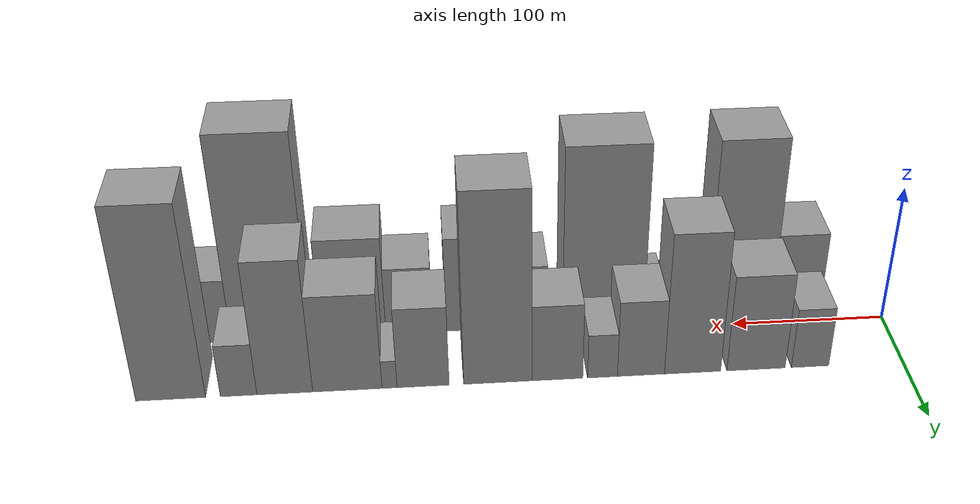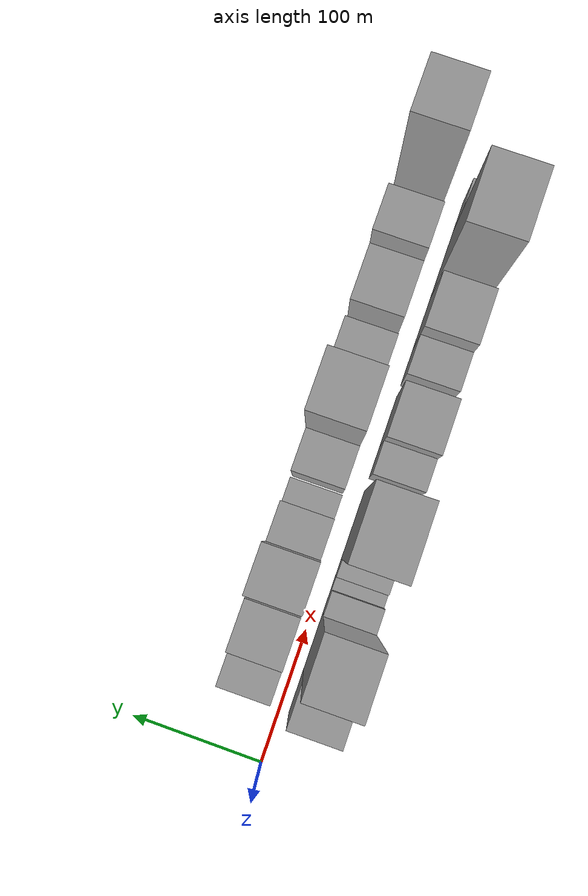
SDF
<sdf version="1.6">
 <world name="default">
  <scene>
   <sky><clouds><speed>12</speed></clouds></sky>
   <ambient>0.4 0.4 0.4 1</ambient>
   <background>0.7 0.7 0.7 1</background>
   <shadows>1</shadows>
  </scene>
  <gravity>0 0 -9.8066</gravity>
  <magnetic_field>6e-06 2.3e-05 -4.2e-05</magnetic_field>
  <physics default="0" name="default_physics" type="ode">
   <ode>
    <solver>
     <type>quick</type>
     <iters>10</iters>
     <sor>1.0</sor>
     <use_dynamic_moi_rescaling>0</use_dynamic_moi_rescaling>
    </solver>
    <constraints>
     <cfm>0</cfm>
     <erp>0.2</erp>
     <contact_max_correcting_vel>100</contact_max_correcting_vel>
     <contact_surface_layer>0.001</contact_surface_layer>
    </constraints>
   </ode>
   <max_step_size>0.004</max_step_size>
   <real_time_factor>1</real_time_factor>
   <real_time_update_rate>250</real_time_update_rate>
  </physics>
  <light name="sun" type="directional">
   <pose>0 0 10 0 0 0</pose>
   <diffuse>0.8 0.8 0.8 1</diffuse>
   <specular>0.2 0.2 0.2 1</specular>
   <attenuation>
    <range>1000</range>
    <constant>0.9</constant>
    <linear>0.01</linear>
    <quadratic>0.001</quadratic>
   </attenuation>
   <direction>-0.5 0.1 -0.9</direction>
  </light>
  <model name="building_1">
   <static>1</static>
   <pose>60.0009 27.5000 0 0.000000 0.000000 1.570796</pose>
   <link name="link">
    <pose>0 0 22.50 0 0 0</pose>
    <collision name="collision"><geometry><box><size>40.0000 24.0019 45.0000</size></box></geometry></collision>
    <visual name="visual">
     <cast_shadows>0</cast_shadows>
     <geometry><box><size>40.0000 24.0019 45.0000</size></box></geometry>
     <material>
      <script>
       <uri>model://grey_wall/materials/scripts</uri>
       <uri>model://grey_wall/materials/textures</uri>
       <name>vrc/grey_wall</name>
      </script>
     </material>
    </visual>
   </link>
  </model>
  <model name="building_2">
   <static>1</static>
   <pose>94.6511 27.5000 0 0.000000 0.000000 1.570796</pose>
   <link name="link">
    <pose>0 0 36.00 0 0 0</pose>
    <collision name="collision"><geometry><box><size>40.0000 37.2985 72.0000</size></box></geometry></collision>
    <visual name="visual">
     <cast_shadows>0</cast_shadows>
     <geometry><box><size>40.0000 37.2985 72.0000</size></box></geometry>
     <material>
      <script>
       <uri>model://grey_wall/materials/scripts</uri>
       <uri>model://grey_wall/materials/textures</uri>
       <name>vrc/grey_wall</name>
      </script>
     </material>
    </visual>
   </link>
  </model>
  <model name="building_3">
   <static>1</static>
   <pose>135.1758 27.5000 0 0.000000 0.000000 1.570796</pose>
   <link name="link">
    <pose>0 0 52.50 0 0 0</pose>
    <collision name="collision"><geometry><box><size>40.0000 35.7508 105.0000</size></box></geometry></collision>
    <visual name="visual">
     <cast_shadows>0</cast_shadows>
     <geometry><box><size>40.0000 35.7508 105.0000</size></box></geometry>
     <material>
      <script>
       <uri>model://grey_wall/materials/scripts</uri>
       <uri>model://grey_wall/materials/textures</uri>
       <name>vrc/grey_wall</name>
      </script>
     </material>
    </visual>
   </link>
  </model>
  <model name="building_4">
   <static>1</static>
   <pose>167.9409 27.5000 0 0.000000 0.000000 1.570796</pose>
   <link name="link">
    <pose>0 0 28.50 0 0 0</pose>
    <collision name="collision"><geometry><box><size>40.0000 29.7795 57.0000</size></box></geometry></collision>
    <visual name="visual">
     <cast_shadows>0</cast_shadows>
     <geometry><box><size>40.0000 29.7795 57.0000</size></box></geometry>
     <material>
      <script>
       <uri>model://grey_wall/materials/scripts</uri>
       <uri>model://grey_wall/materials/textures</uri>
       <name>vrc/grey_wall</name>
      </script>
     </material>
    </visual>
   </link>
  </model>
  <model name="building_5">
   <static>1</static>
   <pose>192.2380 27.5000 0 0.000000 0.000000 1.570796</pose>
   <link name="link">
    <pose>0 0 16.50 0 0 0</pose>
    <collision name="collision"><geometry><box><size>40.0000 18.8147 33.0000</size></box></geometry></collision>
    <visual name="visual">
     <cast_shadows>0</cast_shadows>
     <geometry><box><size>40.0000 18.8147 33.0000</size></box></geometry>
     <material>
      <script>
       <uri>model://grey_wall/materials/scripts</uri>
       <uri>model://grey_wall/materials/textures</uri>
       <name>vrc/grey_wall</name>
      </script>
     </material>
    </visual>
   </link>
  </model>
  <model name="building_6">
   <static>1</static>
   <pose>220.6349 27.5000 0 0.000000 0.000000 1.570796</pose>
   <link name="link">
    <pose>0 0 28.50 0 0 0</pose>
    <collision name="collision"><geometry><box><size>40.0000 31.9791 57.0000</size></box></geometry></collision>
    <visual name="visual">
     <cast_shadows>0</cast_shadows>
     <geometry><box><size>40.0000 31.9791 57.0000</size></box></geometry>
     <material>
      <script>
       <uri>model://grey_wall/materials/scripts</uri>
       <uri>model://grey_wall/materials/textures</uri>
       <name>vrc/grey_wall</name>
      </script>
     </material>
    </visual>
   </link>
  </model>
  <model name="building_7">
   <static>1</static>
   <pose>257.9094 27.5000 0 0.000000 0.000000 1.570796</pose>
   <link name="link">
    <pose>0 0 70.50 0 0 0</pose>
    <collision name="collision"><geometry><box><size>40.0000 42.5698 141.0000</size></box></geometry></collision>
    <visual name="visual">
     <cast_shadows>0</cast_shadows>
     <geometry><box><size>40.0000 42.5698 141.0000</size></box></geometry>
     <material>
      <script>
       <uri>model://grey_wall/materials/scripts</uri>
       <uri>model://grey_wall/materials/textures</uri>
       <name>vrc/grey_wall</name>
      </script>
     </material>
    </visual>
   </link>
  </model>
  <model name="building_8">
   <static>1</static>
   <pose>304.3953 27.5000 0 0.000000 0.000000 1.570796</pose>
   <link name="link">
    <pose>0 0 30.00 0 0 0</pose>
    <collision name="collision"><geometry><box><size>40.0000 32.4019 60.0000</size></box></geometry></collision>
    <visual name="visual">
     <cast_shadows>0</cast_shadows>
     <geometry><box><size>40.0000 32.4019 60.0000</size></box></geometry>
     <material>
      <script>
       <uri>model://grey_wall/materials/scripts</uri>
       <uri>model://grey_wall/materials/textures</uri>
       <name>vrc/grey_wall</name>
      </script>
     </material>
    </visual>
   </link>
  </model>
  <model name="building_9">
   <static>1</static>
   <pose>325.1874 27.5000 0 0.000000 0.000000 1.570796</pose>
   <link name="link">
    <pose>0 0 10.50 0 0 0</pose>
    <collision name="collision"><geometry><box><size>40.0000 9.1823 21.0000</size></box></geometry></collision>
    <visual name="visual">
     <cast_shadows>0</cast_shadows>
     <geometry><box><size>40.0000 9.1823 21.0000</size></box></geometry>
     <material>
      <script>
       <uri>model://grey_wall/materials/scripts</uri>
       <uri>model://grey_wall/materials/textures</uri>
       <name>vrc/grey_wall</name>
      </script>
     </material>
    </visual>
   </link>
  </model>
  <model name="building_10">
   <static>1</static>
   <pose>351.1280 27.5000 0 0.000000 0.000000 1.570796</pose>
   <link name="link">
    <pose>0 0 36.00 0 0 0</pose>
    <collision name="collision"><geometry><box><size>40.0000 42.6989 72.0000</size></box></geometry></collision>
    <visual name="visual">
     <cast_shadows>0</cast_shadows>
     <geometry><box><size>40.0000 42.6989 72.0000</size></box></geometry>
     <material>
      <script>
       <uri>model://grey_wall/materials/scripts</uri>
       <uri>model://grey_wall/materials/textures</uri>
       <name>vrc/grey_wall</name>
      </script>
     </material>
    </visual>
   </link>
  </model>
  <model name="building_11">
   <static>1</static>
   <pose>389.5575 27.5000 0 0.000000 0.000000 1.570796</pose>
   <link name="link">
    <pose>0 0 49.50 0 0 0</pose>
    <collision name="collision"><geometry><box><size>40.0000 34.1600 99.0000</size></box></geometry></collision>
    <visual name="visual">
     <cast_shadows>0</cast_shadows>
     <geometry><box><size>40.0000 34.1600 99.0000</size></box></geometry>
     <material>
      <script>
       <uri>model://grey_wall/materials/scripts</uri>
       <uri>model://grey_wall/materials/textures</uri>
       <name>vrc/grey_wall</name>
      </script>
     </material>
    </visual>
   </link>
  </model>
  <model name="building_12">
   <static>1</static>
   <pose>417.7652 27.5000 0 0.000000 0.000000 1.570796</pose>
   <link name="link">
    <pose>0 0 19.50 0 0 0</pose>
    <collision name="collision"><geometry><box><size>40.0000 22.2553 39.0000</size></box></geometry></collision>
    <visual name="visual">
     <cast_shadows>0</cast_shadows>
     <geometry><box><size>40.0000 22.2553 39.0000</size></box></geometry>
     <material>
      <script>
       <uri>model://grey_wall/materials/scripts</uri>
       <uri>model://grey_wall/materials/textures</uri>
       <name>vrc/grey_wall</name>
      </script>
     </material>
    </visual>
   </link>
  </model>
  <model name="building_13">
   <static>1</static>
   <pose>459.0526 27.5000 0 0.000000 0.000000 1.570796</pose>
   <link name="link">
    <pose>0 0 70.50 0 0 0</pose>
    <collision name="collision"><geometry><box><size>40.0000 42.3195 141.0000</size></box></geometry></collision>
    <visual name="visual">
     <cast_shadows>0</cast_shadows>
     <geometry><box><size>40.0000 42.3195 141.0000</size></box></geometry>
     <material>
      <script>
       <uri>model://grey_wall/materials/scripts</uri>
       <uri>model://grey_wall/materials/textures</uri>
       <name>vrc/grey_wall</name>
      </script>
     </material>
    </visual>
   </link>
  </model>
  <model name="building_14">
   <static>1</static>
   <pose>56.3997 -27.5000 0 0.000000 0.000000 1.570796</pose>
   <link name="link">
    <pose>0 0 31.50 0 0 0</pose>
    <collision name="collision"><geometry><box><size>40.0000 32.7993 63.0000</size></box></geometry></collision>
    <visual name="visual">
     <cast_shadows>0</cast_shadows>
     <geometry><box><size>40.0000 32.7993 63.0000</size></box></geometry>
     <material>
      <script>
       <uri>model://grey_wall/materials/scripts</uri>
       <uri>model://grey_wall/materials/textures</uri>
       <name>vrc/grey_wall</name>
      </script>
     </material>
    </visual>
   </link>
  </model>
  <model name="building_15">
   <static>1</static>
   <pose>94.4734 -27.5000 0 0.000000 0.000000 1.570796</pose>
   <link name="link">
    <pose>0 0 67.50 0 0 0</pose>
    <collision name="collision"><geometry><box><size>40.0000 43.3481 135.0000</size></box></geometry></collision>
    <visual name="visual">
     <cast_shadows>0</cast_shadows>
     <geometry><box><size>40.0000 43.3481 135.0000</size></box></geometry>
     <material>
      <script>
       <uri>model://grey_wall/materials/scripts</uri>
       <uri>model://grey_wall/materials/textures</uri>
       <name>vrc/grey_wall</name>
      </script>
     </material>
    </visual>
   </link>
  </model>
  <model name="building_16">
   <static>1</static>
   <pose>125.6317 -27.5000 0 0.000000 0.000000 1.570796</pose>
   <link name="link">
    <pose>0 0 16.50 0 0 0</pose>
    <collision name="collision"><geometry><box><size>40.0000 18.9686 33.0000</size></box></geometry></collision>
    <visual name="visual">
     <cast_shadows>0</cast_shadows>
     <geometry><box><size>40.0000 18.9686 33.0000</size></box></geometry>
     <material>
      <script>
       <uri>model://grey_wall/materials/scripts</uri>
       <uri>model://grey_wall/materials/textures</uri>
       <name>vrc/grey_wall</name>
      </script>
     </material>
    </visual>
   </link>
  </model>
  <model name="building_17">
   <static>1</static>
   <pose>140.0199 -27.5000 0 0.000000 0.000000 1.570796</pose>
   <link name="link">
    <pose>0 0 10.50 0 0 0</pose>
    <collision name="collision"><geometry><box><size>40.0000 9.8078 21.0000</size></box></geometry></collision>
    <visual name="visual">
     <cast_shadows>0</cast_shadows>
     <geometry><box><size>40.0000 9.8078 21.0000</size></box></geometry>
     <material>
      <script>
       <uri>model://grey_wall/materials/scripts</uri>
       <uri>model://grey_wall/materials/textures</uri>
       <name>vrc/grey_wall</name>
      </script>
     </material>
    </visual>
   </link>
  </model>
  <model name="building_18">
   <static>1</static>
   <pose>151.4881 -27.5000 0 0.000000 0.000000 1.570796</pose>
   <link name="link">
    <pose>0 0 13.50 0 0 0</pose>
    <collision name="collision"><geometry><box><size>40.0000 13.1286 27.0000</size></box></geometry></collision>
    <visual name="visual">
     <cast_shadows>0</cast_shadows>
     <geometry><box><size>40.0000 13.1286 27.0000</size></box></geometry>
     <material>
      <script>
       <uri>model://grey_wall/materials/scripts</uri>
       <uri>model://grey_wall/materials/textures</uri>
       <name>vrc/grey_wall</name>
      </script>
     </material>
    </visual>
   </link>
  </model>
  <model name="building_19">
   <static>1</static>
   <pose>184.9693 -27.5000 0 0.000000 0.000000 1.570796</pose>
   <link name="link">
    <pose>0 0 67.50 0 0 0</pose>
    <collision name="collision"><geometry><box><size>40.0000 53.8338 135.0000</size></box></geometry></collision>
    <visual name="visual">
     <cast_shadows>0</cast_shadows>
     <geometry><box><size>40.0000 53.8338 135.0000</size></box></geometry>
     <material>
      <script>
       <uri>model://grey_wall/materials/scripts</uri>
       <uri>model://grey_wall/materials/textures</uri>
       <name>vrc/grey_wall</name>
      </script>
     </material>
    </visual>
   </link>
  </model>
  <model name="building_20">
   <static>1</static>
   <pose>234.4992 -27.5000 0 0.000000 0.000000 1.570796</pose>
   <link name="link">
    <pose>0 0 24.00 0 0 0</pose>
    <collision name="collision"><geometry><box><size>40.0000 25.2259 48.0000</size></box></geometry></collision>
    <visual name="visual">
     <cast_shadows>0</cast_shadows>
     <geometry><box><size>40.0000 25.2259 48.0000</size></box></geometry>
     <material>
      <script>
       <uri>model://grey_wall/materials/scripts</uri>
       <uri>model://grey_wall/materials/textures</uri>
       <name>vrc/grey_wall</name>
      </script>
     </material>
    </visual>
   </link>
  </model>
  <model name="building_21">
   <static>1</static>
   <pose>267.7643 -27.5000 0 0.000000 0.000000 1.570796</pose>
   <link name="link">
    <pose>0 0 36.00 0 0 0</pose>
    <collision name="collision"><geometry><box><size>40.0000 41.3043 72.0000</size></box></geometry></collision>
    <visual name="visual">
     <cast_shadows>0</cast_shadows>
     <geometry><box><size>40.0000 41.3043 72.0000</size></box></geometry>
     <material>
      <script>
       <uri>model://grey_wall/materials/scripts</uri>
       <uri>model://grey_wall/materials/textures</uri>
       <name>vrc/grey_wall</name>
      </script>
     </material>
    </visual>
   </link>
  </model>
  <model name="building_22">
   <static>1</static>
   <pose>312.4943 -27.5000 0 0.000000 0.000000 1.570796</pose>
   <link name="link">
    <pose>0 0 25.50 0 0 0</pose>
    <collision name="collision"><geometry><box><size>40.0000 30.1557 51.0000</size></box></geometry></collision>
    <visual name="visual">
     <cast_shadows>0</cast_shadows>
     <geometry><box><size>40.0000 30.1557 51.0000</size></box></geometry>
     <material>
      <script>
       <uri>model://grey_wall/materials/scripts</uri>
       <uri>model://grey_wall/materials/textures</uri>
       <name>vrc/grey_wall</name>
      </script>
     </material>
    </visual>
   </link>
  </model>
  <model name="building_23">
   <static>1</static>
   <pose>348.6315 -27.5000 0 0.000000 0.000000 1.570796</pose>
   <link name="link">
    <pose>0 0 37.50 0 0 0</pose>
    <collision name="collision"><geometry><box><size>40.0000 42.1188 75.0000</size></box></geometry></collision>
    <visual name="visual">
     <cast_shadows>0</cast_shadows>
     <geometry><box><size>40.0000 42.1188 75.0000</size></box></geometry>
     <material>
      <script>
       <uri>model://grey_wall/materials/scripts</uri>
       <uri>model://grey_wall/materials/textures</uri>
       <name>vrc/grey_wall</name>
      </script>
     </material>
    </visual>
   </link>
  </model>
  <model name="building_24">
   <static>1</static>
   <pose>372.9598 -27.5000 0 0.000000 0.000000 1.570796</pose>
   <link name="link">
    <pose>0 0 7.50 0 0 0</pose>
    <collision name="collision"><geometry><box><size>40.0000 6.5377 15.0000</size></box></geometry></collision>
    <visual name="visual">
     <cast_shadows>0</cast_shadows>
     <geometry><box><size>40.0000 6.5377 15.0000</size></box></geometry>
     <material>
      <script>
       <uri>model://grey_wall/materials/scripts</uri>
       <uri>model://grey_wall/materials/textures</uri>
       <name>vrc/grey_wall</name>
      </script>
     </material>
    </visual>
   </link>
  </model>
  <model name="building_25">
   <static>1</static>
   <pose>401.8196 -27.5000 0 0.000000 0.000000 1.570796</pose>
   <link name="link">
    <pose>0 0 76.50 0 0 0</pose>
    <collision name="collision"><geometry><box><size>40.0000 51.1820 153.0000</size></box></geometry></collision>
    <visual name="visual">
     <cast_shadows>0</cast_shadows>
     <geometry><box><size>40.0000 51.1820 153.0000</size></box></geometry>
     <material>
      <script>
       <uri>model://grey_wall/materials/scripts</uri>
       <uri>model://grey_wall/materials/textures</uri>
       <name>vrc/grey_wall</name>
      </script>
     </material>
    </visual>
   </link>
  </model>
  <model name="building_26">
   <static>1</static>
   <pose>439.9927 -27.5000 0 0.000000 0.000000 1.570796</pose>
   <link name="link">
    <pose>0 0 24.00 0 0 0</pose>
    <collision name="collision"><geometry><box><size>40.0000 25.1641 48.0000</size></box></geometry></collision>
    <visual name="visual">
     <cast_shadows>0</cast_shadows>
     <geometry><box><size>40.0000 25.1641 48.0000</size></box></geometry>
     <material>
      <script>
       <uri>model://grey_wall/materials/scripts</uri>
       <uri>model://grey_wall/materials/textures</uri>
       <name>vrc/grey_wall</name>
      </script>
     </material>
    </visual>
   </link>
  </model>
 </world>
</sdf>
